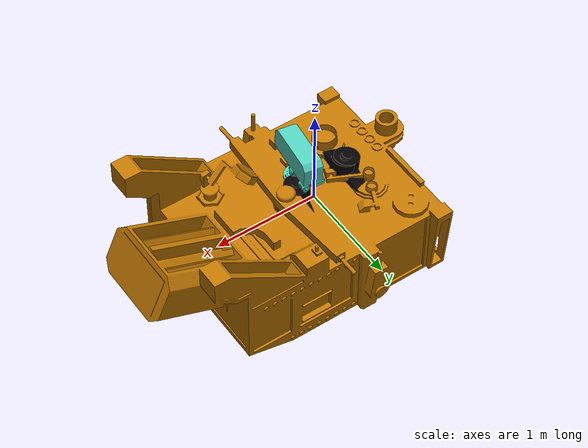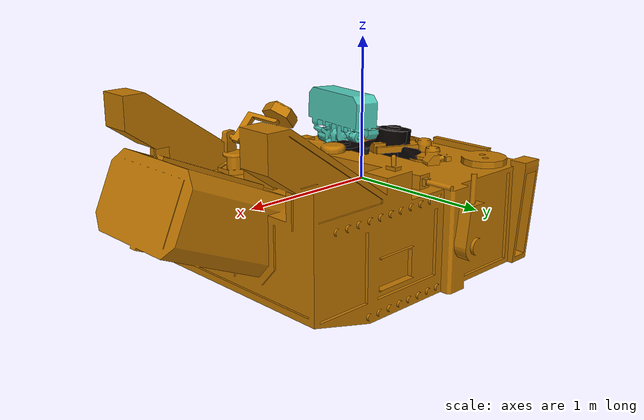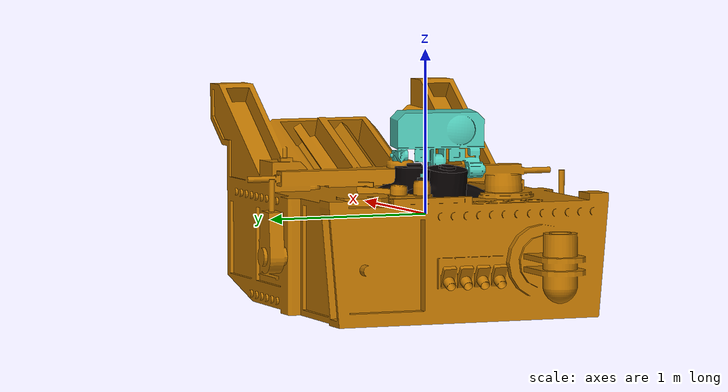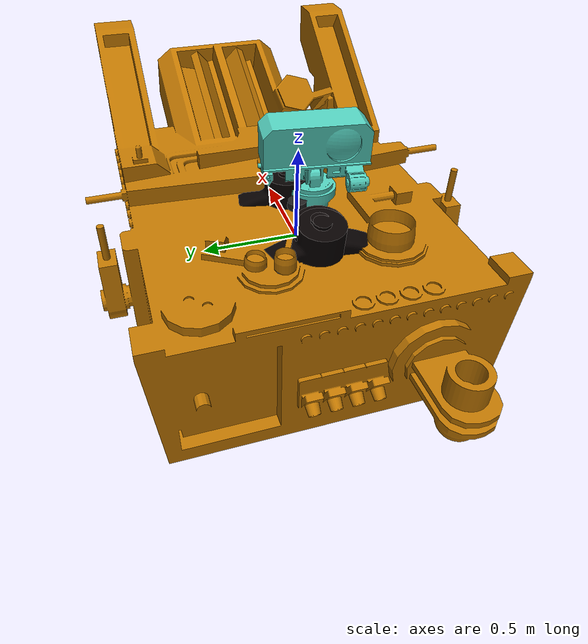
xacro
<robot name="mars_car_tiny_forward" xmlns:xacro="http://ros.org/wiki/xacro">
  <link name="base_footprint"></link>
  <joint name="footprint_joint" type="fixed">
    <origin rpy="0.00000 0.00000 0.000" xyz="0.00000 0.00000 0.00000"/>
    <parent link="base_footprint"/>
    <child link="base_link"/>
    <axis xyz="0.00000 0.00000 1.00000"/>
  </joint>
  <link name="base_link"></link>
  <joint name="base_joint" type="fixed">
    <origin rpy="0.00000 0.00000 0.00000" xyz="0.00000 0.00000 0.00000"/>
    <parent link="base_link"/>
    <child link="Mars6Mars_Rover__Curiosity_1_0__-_whole_body_link"/>
    <axis xyz="0.00000 0.00000 1.00000"/>
  </joint>
  <joint name="arm1" type="revolute">
    <limit lower="-1.57000" upper="1.57000" effort="10000.00000" velocity="5.00000"/>
    <origin rpy="0.00000 0.00000 0.00000" xyz="0.16967 0.06330 -0.05090"/>
    <parent link="Mars6Mars_Rover__Curiosity_1_0__-_whole_body_link"/>
    <child link="Mars6Mars_Rover__Curiosity_1_0__-_15__Arm_Axle-2_link"/>
    <axis xyz="0.00000 0.00000 1.00000"/>
  </joint>
  <joint name="camera1" type="revolute">
    <limit lower="-1.35000" upper="1.35000" effort="10000.00000" velocity="5.00000"/>
    <origin rpy="0.00000 0.00000 0.00000" xyz="0.08930 -0.09970 0.13058"/>
    <parent link="Mars6Mars_Rover__Curiosity_1_0__-_whole_body_link"/>
    <child link="Mars6Mars_Rover__Curiosity_1_0__-_7__Matscam_Holder-1_link"/>
    <axis xyz="0.00000 0.00000 1.00000"/>
  </joint>
  <joint name="left_foot1" type="revolute">
    <limit lower="-0.5000" upper="0.5000" effort="10000.00000" velocity="5.00000"/>
    <origin rpy="0.00000 0.00000 0.00000" xyz="0.22877 0.03703 -0.11721"/>
    <parent link="Mars6Mars_Rover__Curiosity_1_0__-_28_Wheel_connector_1-2_link"/>
    <child link="Mars6Mars_Rover__Curiosity_1_0__-_33_Front_Wheel_Servo_mech_lin"/>
    <axis xyz="0.00000 0.00000 1.00000"/>
  </joint>
  <joint name="left_foot3" type="revolute">
    <limit lower="-0.5000" upper="0.5000" effort="10000.00000" velocity="5.00000"/>
    <origin rpy="0.00000 0.00000 0.00000" xyz="-0.14234 0.03054 -0.04748"/>
    <parent link="Mars6Mars_Rover__Curiosity_1_0__-_29_Wheel_Connector_2-2_link"/>
    <child link="Mars6Mars_Rover__Curiosity_1_0__-_33_Front_Wheel_Servo_mech.001"/>
    <axis xyz="0.00000 0.00000 1.00000"/>
  </joint>
  <joint name="left_hip" type="revolute">
    <limit lower="-0.35000" upper="0.35000" effort="10000.00000" velocity="5.00000"/>
    <origin rpy="0.00000 0.00000 0.00000" xyz="-0.00550 0.17316 -0.03460"/>
    <dynamics damping="5" friction="5"/>
    <parent link="Mars6Mars_Rover__Curiosity_1_0__-_whole_body_link"/>
    <child link="Mars6Mars_Rover__Curiosity_1_0__-_28_Wheel_connector_1-2_link"/>
    <axis xyz="0.00000 1.00000 0.00000"/>
  </joint>
  <joint name="left_knee" type="revolute">
    <limit lower="-0.35000" upper="0.35000" effort="10000.00000" velocity="5.00000"/>
    <origin rpy="0.00000 0.00000 0.00000" xyz="-0.13623 0.00791 -0.03870"/>
    <parent link="Mars6Mars_Rover__Curiosity_1_0__-_28_Wheel_connector_1-2_link"/>
    <child link="Mars6Mars_Rover__Curiosity_1_0__-_29_Wheel_Connector_2-2_link"/>
    <axis xyz="0.00000 1.00000 0.00000"/>
  </joint>
  <joint name="left_wheel1" type="continuous">
    <limit lower="0" upper="0" effort="10000.00000" velocity="5.00000"/>
    <origin rpy="0.00000 0.00000 0.00000" xyz="-0.00238 0.02702 -0.08314"/>
    <parent link="Mars6Mars_Rover__Curiosity_1_0__-_33_Front_Wheel_Servo_mech_lin"/>
    <child link="Mars6Mars_Rover__Curiosity_1_0__-_1__Rover_Wheel_left_1_link"/>
    <axis xyz="0.00000 1.00000 0.00000"/>
  </joint>
  <joint name="left_wheel2" type="continuous">
    <limit lower="0" upper="0" effort="10000.00000" velocity="5.00000"/>
    <origin rpy="0.00000 0.00000 0.00000" xyz="0.12267 0.08478 -0.15679"/>
    <parent link="Mars6Mars_Rover__Curiosity_1_0__-_29_Wheel_Connector_2-2_link"/>
    <child link="Mars6Mars_Rover__Curiosity_1_0__-_1__Rover_Wheel_left_2_link"/>
    <axis xyz="0.00000 1.00000 0.00000"/>
    <dynamics damping="1" friction="1" />
  </joint>
  <joint name="left_wheel3" type="continuous">
    <limit lower="0" upper="0" effort="10000.00000" velocity="5.00000"/>
    <origin rpy="-0.00000 -0.00000 0.00000" xyz="-0.00965 0.02541 -0.08514"/>
    <parent link="Mars6Mars_Rover__Curiosity_1_0__-_33_Front_Wheel_Servo_mech.001"/>
    <child link="Mars6Mars_Rover__Curiosity_1_0__-_1__Rover_Wheel_left_3_link"/>
    <axis xyz="0.00000 1.00000 0.00000"/>
    <dynamics damping="1" friction="1" />
  </joint>
  <joint name="right_foot1" type="revolute">
    <limit lower="-0.5000" upper="0.5000" effort="10000.00000" velocity="5.00000"/>
    <origin rpy="0.00000 0.00000 0.00000" xyz="0.22441 -0.04260 -0.11148"/>
    <parent link="Mars6Mars_Rover__Curiosity_1_0__-_28_Wheel_connector_1-2_001_li"/>
    <child link="Mars6Mars_Rover__Curiosity_1_0__-_33_Front_Wheel_Servo_mech.002"/>
    <axis xyz="0.00000 0.00000 1.00000"/>
  </joint>
  <joint name="right_foot3" type="revolute">
    <limit lower="-0.5000" upper="0.5000" effort="10000.00000" velocity="5.00000"/>
    <origin rpy="0.00000 0.00000 0.00000" xyz="-0.13920 -0.03213 -0.04813"/>
    <parent link="Mars6Mars_Rover__Curiosity_1_0__-_29_Wheel_Connector_2-2_001_li"/>
    <child link="Mars6Mars_Rover__Curiosity_1_0__-_33_Front_Wheel_Servo_mechanis"/>
    <axis xyz="0.00000 0.00000 1.00000"/>

  </joint>
  <joint name="right_hip" type="revolute">
    <limit lower="-0.35000" upper="0.35000" effort="10000.00000" velocity="5.00000"/>
    <origin rpy="0.00000 0.00000 0.00000" xyz="-0.00194 -0.18320 -0.03644"/>
    <dynamics damping="5" friction="5"/>
    <parent link="Mars6Mars_Rover__Curiosity_1_0__-_whole_body_link"/>
    <child link="Mars6Mars_Rover__Curiosity_1_0__-_28_Wheel_connector_1-2_001_li"/>
    <axis xyz="0.00000 1.00000 0.00000"/>
  </joint>
  <joint name="right_knee" type="revolute">
    <limit lower="-0.35000" upper="0.35000" effort="10000.00000" velocity="5.00000"/>
    <origin rpy="0.00000 0.00000 0.00000" xyz="-0.13786 -0.00966 -0.03981"/>
    <parent link="Mars6Mars_Rover__Curiosity_1_0__-_28_Wheel_connector_1-2_001_li"/>
    <child link="Mars6Mars_Rover__Curiosity_1_0__-_29_Wheel_Connector_2-2_001_li"/>
    <axis xyz="0.00000 1.00000 0.00000"/>
    <dynamics damping="1" friction="1" />
  </joint>
  <joint name="right_wheel1" type="continuous">
    <limit lower="0" upper="0" effort="10000.00000" velocity="5.00000"/>
    <origin rpy="0.00000 0.00000 0.00000" xyz="0.00483 -0.02175 -0.08672"/>
    <parent link="Mars6Mars_Rover__Curiosity_1_0__-_33_Front_Wheel_Servo_mech.002"/>
    <child link="Mars6Mars_Rover__Curiosity_1_0__-_1__Rover_Wheel_right_1_link"/>
    <axis xyz="0.00000 1.00000 0.00000"/>
    <dynamics damping="1" friction="1" />
  </joint>
  <joint name="right_wheel2" type="continuous">
    <limit lower="0" upper="0" effort="10000.00000" velocity="5.00000"/>
    <origin rpy="0.00000 0.00000 0.00000" xyz="0.12019 -0.08425 -0.15146"/>
    <parent link="Mars6Mars_Rover__Curiosity_1_0__-_29_Wheel_Connector_2-2_001_li"/>
    <child link="Mars6Mars_Rover__Curiosity_1_0__-_1__Rover_Wheel_right_2_link"/>
    <axis xyz="0.00000 1.00000 0.00000"/>
    <dynamics damping="1" friction="1" />
  </joint>
  <joint name="right_wheel3" type="continuous">
    <limit lower="0" upper="0" effort="10000.00000" velocity="5.00000"/>
    <origin rpy="0.00000 0.00000 0.00000" xyz="-0.01339 -0.02340 -0.08101"/>
    <parent link="Mars6Mars_Rover__Curiosity_1_0__-_33_Front_Wheel_Servo_mechanis"/>
    <child link="Mars6Mars_Rover__Curiosity_1_0__-_1__Rover_Wheel_right_3_link"/>
    <axis xyz="0.00000 1.00000 0.00000"/>
    <dynamics damping="1" friction="1" />
  </joint>
  <link name="Mars6Mars_Rover__Curiosity_1_0__-_15__Arm_Axle-2_link">
  </link>
  <link name="Mars6Mars_Rover__Curiosity_1_0__-_1__Rover_Wheel_left_1_link">
    <collision>
      <origin rpy="1.78342 1.57080 0.17772" xyz="0.00027 -0.00215 0.00055"/>
      <geometry>
        <sphere radius="0.07790"/>
      </geometry>
    </collision>
    <inertial>
    <inertia  ixx="0.015680337994991043" ixy="0" ixz="0" iyy="0.020197781386013337" iyz="0" izz="0.015688269997299446" />
      <origin rpy="0.00000 0.00000 0.00000" xyz="0.00009 -0.00144 0.00018"/>
      <mass value="5.00000"/>
    </inertial>
    <visual name="Mars6Mars_Rover__Curiosity_1_0__-_1__Rover_Wheel_left_1">
      <origin rpy="0.00000 0.00000 0.00000" xyz="0.00000 0.00000 0.00000"/>
      <material name="材质.002"/>
      <geometry>
        <mesh filename="file://$(find marscar_gazebo_ros2)/models/mars_car_tiny_forward/meshes/dae/Mars6Mars_Rover__Curiosity_1_0__-_1__Rover_Wheel_left_1.001.dae" scale="1.00000 1.00000 1.00000"/>
      </geometry>
    </visual>
  </link>
  <link name="Mars6Mars_Rover__Curiosity_1_0__-_1__Rover_Wheel_left_2_link">
    <collision>
      <origin rpy="1.57080 0.00000 -3.14159" xyz="0.00055 -0.00203 0.00047"/>
      <geometry>
        <sphere radius="0.07790"/>
      </geometry>
    </collision>
    <inertial>
     <inertia  ixx="0.015680337994991043" ixy="0" ixz="0" iyy="0.020197781386013337" iyz="0" izz="0.015688269997299446" />
      <origin rpy="0.00000 0.00000 0.00000" xyz="0.00021 -0.00143 -0.00006"/>
      <mass value="5.00000"/>
    </inertial>
    <visual name="Mars6Mars_Rover__Curiosity_1_0__-_1__Rover_Wheel_left_2">
      <origin rpy="0.00000 0.00000 0.00000" xyz="0.00000 0.00000 0.00000"/>
      <material name="材质.002"/>
      <geometry>
        <mesh filename="file://$(find marscar_gazebo_ros2)/models/mars_car_tiny_forward/meshes/dae/Mars6Mars_Rover__Curiosity_1_0__-_1__Rover_Wheel_left_2.001.dae" scale="1.00000 1.00000 1.00000"/>
      </geometry>
    </visual>
  </link>
  <link name="Mars6Mars_Rover__Curiosity_1_0__-_1__Rover_Wheel_left_3_link">
    <collision>
      <origin rpy="1.57080 -0.00000 -3.14159" xyz="0.00059 -0.00203 0.00041"/>
      <geometry>
        <sphere radius="0.07790"/>
      </geometry>
    </collision>
    <inertial>
      <inertia  ixx="0.015680337994991043" ixy="0" ixz="0" iyy="0.020197781386013337" iyz="0" izz="0.015688269997299446" />
      <origin rpy="0.00000 0.00000 0.00000" xyz="0.00022 -0.00143 -0.00005"/>
      <mass value="5.00000"/>
    </inertial>
    <visual name="Mars6Mars_Rover__Curiosity_1_0__-_1__Rover_Wheel_left_3">
      <origin rpy="0.00000 0.00000 -0.00000" xyz="0.00000 -0.00000 0.00000"/>
      <material name="材质.002"/>
      <geometry>
        <mesh filename="file://$(find marscar_gazebo_ros2)/models/mars_car_tiny_forward/meshes/dae/Mars6Mars_Rover__Curiosity_1_0__-_1__Rover_Wheel_left_3.001.dae" scale="1.00000 1.00000 1.00000"/>
      </geometry>
    </visual>
  </link>
  <link name="Mars6Mars_Rover__Curiosity_1_0__-_1__Rover_Wheel_right_1_link">
    <collision>
      <origin rpy="-1.57093 1.52197 0.00338" xyz="-0.00066 0.00193 0.00038"/>
      <geometry>
        <sphere radius="0.07790"/>
      </geometry>
    </collision>
    <inertial>
      <inertia  ixx="0.015680337994991043" ixy="0" ixz="0" iyy="0.020197781386013337" iyz="0" izz="0.015688269997299446" />
      <origin rpy="0.00000 0.00000 0.00000" xyz="-0.00023 0.00143 -0.00006"/>
      <mass value="5.00000"/>
    </inertial>
    <visual name="Mars6Mars_Rover__Curiosity_1_0__-_1__Rover_Wheel_right_1">
      <origin rpy="0.00000 0.00000 0.00000" xyz="-0.00023 0.00143 -0.00006"/>
      <material name="材质.002"/>
      <geometry>
        <mesh filename="file://$(find marscar_gazebo_ros2)/models/mars_car_tiny_forward/meshes/dae/Mars6Mars_Rover__Curiosity_1_0__-_1__Rover_Wheel_right_1.001.dae" scale="1.00000 1.00000 1.00000"/>
      </geometry>
    </visual>
  </link>
  <link name="Mars6Mars_Rover__Curiosity_1_0__-_1__Rover_Wheel_right_2_link">
    <collision>
      <origin rpy="1.57080 0.00000 -3.14159" xyz="-0.00061 0.00203 0.00040"/>
      <geometry>
        <sphere radius="0.07790"/>
      </geometry>
    </collision>
    <inertial>
      <inertia  ixx="0.015680337994991043" ixy="0" ixz="0" iyy="0.020197781386013337" iyz="0" izz="0.015688269997299446" />
      <origin rpy="0.00000 0.00000 0.00000" xyz="-0.00021 0.00143 -0.00005"/>
      <mass value="5.00000"/>
    </inertial>
    <visual name="Mars6Mars_Rover__Curiosity_1_0__-_1__Rover_Wheel_right_2">
      <origin rpy="0.00000 0.00000 0.00000" xyz="0.00000 0.00000 0.00000"/>
      <material name="材质.002"/>
      <geometry>
        <mesh filename="file://$(find marscar_gazebo_ros2)/models/mars_car_tiny_forward/meshes/dae/Mars6Mars_Rover__Curiosity_1_0__-_1__Rover_Wheel_right_2.001.dae" scale="1.00000 1.00000 1.00000"/>
      </geometry>
    </visual>
  </link>
  <link name="Mars6Mars_Rover__Curiosity_1_0__-_1__Rover_Wheel_right_3_link">
    <collision>
      <origin rpy="1.58277 0.03499 -3.13636" xyz="0.00056 0.00193 -0.00063"/>
      <geometry>
        <sphere radius="0.07790"/>
      </geometry>
    </collision>
    <inertial>
      <inertia  ixx="0.015680337994991043" ixy="0" ixz="0" iyy="0.020197781386013337" iyz="0" izz="0.015688269997299446" />
      <origin rpy="0.00000 0.00000 0.00000" xyz="-0.00026 0.00143 -0.00004"/>
      <mass value="5.00000"/>
    </inertial>
    <visual name="Mars6Mars_Rover__Curiosity_1_0__-_1__Rover_Wheel_right_3">
      <origin rpy="0.00000 0.00000 0.00000" xyz="0.00000 0.00000 0.00000"/>
      <material name="材质.002"/>
      <geometry>
        <mesh filename="file://$(find marscar_gazebo_ros2)/models/mars_car_tiny_forward/meshes/dae/Mars6Mars_Rover__Curiosity_1_0__-_1__Rover_Wheel_right_3.001.dae" scale="1.00000 1.00000 1.00000"/>
      </geometry>
    </visual>
  </link>

  <link name="Mars6Mars_Rover__Curiosity_1_0__-_28_Wheel_connector_1-2_001_li">
    <inertial>
      <inertia  ixx="0.01586436102114739" ixy="0" ixz="0" iyy="0.1389335988966778" iyz="0" izz="0.13507964012734022" />
      <origin rpy="0.00000 0.00000 0.00000" xyz="0.10977 -0.00456 -0.04567"/>
      <mass value="10.00000"/>
    </inertial>
    <visual name="Mars6Mars_Rover__Curiosity_1_0__-_28_Wheel_connector_1-2_001">
      <origin rpy="0.00000 0.00000 0.00000" xyz="0.08989 0.00000 -0.03121"/>
      <material name="材质.007"/>
      <geometry>
        <mesh filename="file://$(find marscar_gazebo_ros2)/models/mars_car_tiny_forward/meshes/dae/Mars6Mars_Rover__Curiosity_1_0__-_28_Wheel_connector_1-2_00.dae" scale="1.00000 1.00000 1.00000"/>
      </geometry>
    </visual>
  </link>
  <link name="Mars6Mars_Rover__Curiosity_1_0__-_28_Wheel_connector_1-2_link">
    <inertial>
      <inertia  ixx="0.015864359967019633" ixy="0" ixz="0" iyy="0.1389335988966778" iyz="0" izz="0.13507963907321247" />
      <origin rpy="0.00000 0.00000 0.00000" xyz="0.11332 0.00456 -0.04751"/>
      <mass value="10.00000"/>
    </inertial>
    <visual name="Mars6Mars_Rover__Curiosity_1_0__-_28_Wheel_connector_1-2">
      <origin rpy="0.00000 0.00000 0.00000" xyz="0.09345 0.00000 -0.03304"/>
      <material name="材质.007"/>
      <geometry>
        <mesh filename="file://$(find marscar_gazebo_ros2)/models/mars_car_tiny_forward/meshes/dae/Mars6Mars_Rover__Curiosity_1_0__-_28_Wheel_connector_1-2.001.dae" scale="1.00000 1.00000 1.00000"/>
      </geometry>
    </visual>
  </link>
  <link name="Mars6Mars_Rover__Curiosity_1_0__-_29_Wheel_Connector_2-2_001_li">
    <inertial>
      <inertia  ixx="0.004092295328463539" ixy="0" ixz="0" iyy="0.011362644811934977" iyz="0" izz="0.008365089424103947" />
      <origin rpy="0.00000 0.00000 0.00000" xyz="0.04148 -0.01770 -0.09031"/>
      <mass value="5.00000"/>
    </inertial>
    <visual name="Mars6Mars_Rover__Curiosity_1_0__-_29_Wheel_Connector_2-2_001">
      <origin rpy="0.00000 0.00000 0.00000" xyz="-0.02351 -0.01970 -0.04864"/>
      <material name="材质.007"/>
      <geometry>
        <mesh filename="file://$(find marscar_gazebo_ros2)/models/mars_car_tiny_forward/meshes/dae/Mars6Mars_Rover__Curiosity_1_0__-_29_Wheel_Connector_2-2_00.dae" scale="1.00000 1.00000 1.00000"/>
      </geometry>
    </visual>
  </link>
  <link name="Mars6Mars_Rover__Curiosity_1_0__-_29_Wheel_Connector_2-2_link">
    <inertial>
      <inertia  ixx="0.004092295328463539" ixy="0" ixz="0" iyy="0.011362644811934977" iyz="0" izz="0.008365089424103947" />
      <origin rpy="0.00000 0.00000 0.00000" xyz="0.04341 0.01950 -0.09326"/>
      <mass value="5.00000"/>
    </inertial>
    <visual name="Mars6Mars_Rover__Curiosity_1_0__-_29_Wheel_Connector_2-2">
      <origin rpy="0.00000 0.00000 0.00000" xyz="-0.02159 0.02151 -0.05158"/>
      <material name="材质.007"/>
      <geometry>
        <mesh filename="file://$(find marscar_gazebo_ros2)/models/mars_car_tiny_forward/meshes/dae/Mars6Mars_Rover__Curiosity_1_0__-_29_Wheel_Connector_2-2.001.dae" scale="1.00000 1.00000 1.00000"/>
      </geometry>
    </visual>
  </link>
  <link name="Mars6Mars_Rover__Curiosity_1_0__-_33_Front_Wheel_Servo_mech.001">
    <inertial>
      <inertia  ixx="0.002352120044837628" ixy="0" ixz="0" iyy="0.0017273099964177177" iyz="0" izz="0.0011494207690713" />
      <origin rpy="0.00000 0.00000 0.00000" xyz="-0.00607 -0.02996 -0.06059"/>
      <mass value="5.00000"/>
    </inertial>
    <visual name="Mars6Mars_Rover__Curiosity_1_0__-_33_Front_Wheel_Servo_mech.004">
      <origin rpy="0.00000 0.00000 0.00000" xyz="-0.00523 -0.02934 -0.05449"/>
      <material name="材质.007"/>
      <geometry>
        <mesh filename="file://$(find marscar_gazebo_ros2)/models/mars_car_tiny_forward/meshes/dae/Mars6Mars_Rover__Curiosity_1_0__-_33_Front_Wheel_Servo_mech.004.dae" scale="1.00000 1.00000 1.00000"/>
      </geometry>
    </visual>
  </link>
  <link name="Mars6Mars_Rover__Curiosity_1_0__-_33_Front_Wheel_Servo_mech.002">
    <inertial>
      <inertia  ixx="0.0023420283542323846" ixy="0" ixz="0" iyy="0.0017433353748485582" iyz="0" izz="0.0011561288965861634" />
      <origin rpy="0.00000 0.00000 0.00000" xyz="-0.00802 0.03211 -0.06195"/>
      <mass value="5.00000"/>
    </inertial>
    <visual name="Mars6Mars_Rover__Curiosity_1_0__-_33_Front_Wheel_Servo_mech.003">
      <origin rpy="0.00000 0.00000 0.00000" xyz="-0.00793 0.03150 -0.05579"/>
      <material name="材质.007"/>
      <geometry>
        <mesh filename="file://$(find marscar_gazebo_ros2)/models/mars_car_tiny_forward/meshes/dae/Mars6Mars_Rover__Curiosity_1_0__-_33_Front_Wheel_Servo_mech.003.dae" scale="1.00000 1.00000 1.00000"/>
      </geometry>
    </visual>
  </link>
  <link name="Mars6Mars_Rover__Curiosity_1_0__-_33_Front_Wheel_Servo_mech_lin">
    <inertial>
      <inertia  ixx="0.0023568104222244273" ixy="0" ixz="0" iyy="0.0016739295079963347" iyz="0" izz="0.0011002880751135174" />
      <origin rpy="0.00000 0.00000 0.00000" xyz="-0.00371 -0.02830 -0.05807"/>
      <mass value="5.00000"/>
    </inertial>
    <visual name="Mars6Mars_Rover__Curiosity_1_0__-_33_Front_Wheel_Servo_mech">
      <origin rpy="0.00000 0.00000 0.00000" xyz="-0.00362 -0.02768 -0.05191"/>
      <material name="材质.007"/>
      <geometry>
        <mesh filename="file://$(find marscar_gazebo_ros2)/models/mars_car_tiny_forward/meshes/dae/Mars6Mars_Rover__Curiosity_1_0__-_33_Front_Wheel_Servo_mech.005.dae" scale="1.00000 1.00000 1.00000"/>
      </geometry>
    </visual>
  </link>
  <link name="Mars6Mars_Rover__Curiosity_1_0__-_33_Front_Wheel_Servo_mechanis">
    <inertial>
      <inertia  ixx="0.002346255170752066" ixy="0" ixz="0" iyy="0.0017549479286614136" iyz="0" izz="0.001168817186416394" />
      <origin rpy="0.00000 0.00000 0.00000" xyz="-0.01215 0.03223 -0.05659"/>
      <mass value="5.00000"/>
    </inertial>
    <visual name="Mars6Mars_Rover__Curiosity_1_0__-_33_Front_Wheel_Servo_mech.005">
      <origin rpy="0.00000 0.00000 0.00000" xyz="-0.01140 0.03168 -0.05047"/>
      <material name="材质.007"/>
      <geometry>
        <mesh filename="file://$(find marscar_gazebo_ros2)/models/mars_car_tiny_forward/meshes/dae/Mars6Mars_Rover__Curiosity_1_0__-_33_Front_Wheel_Servo_mech.006.dae" scale="1.00000 1.00000 1.00000"/>
      </geometry>
    </visual>
  </link>
  <link name="Mars6Mars_Rover__Curiosity_1_0__-_7__Matscam_Holder-1_link">
    <inertial>
      <inertia  ixx="0.033972907445050285" ixy="0" ixz="0" iyy="0.02910473861946099" iyz="0" izz="0.008096255098011493" />
      <origin rpy="0.00000 0.00000 0.00000" xyz="0.00007 0.00182 0.00749"/>
      <mass value="10.00000"/>
    </inertial>
    <visual name="Mars6Mars_Rover__Curiosity_1_0__-_7__Matscam_Holder-1">
      <origin rpy="0.00000 0.00000 0.00000" xyz="0.00000 0.00000 0.00000"/>
      <material name="材质.003"/>
      <geometry>
        <mesh filename="file://$(find marscar_gazebo_ros2)/models/mars_car_tiny_forward/meshes/dae/Mars6Mars_Rover__Curiosity_1_0__-_7__Matscam_Holder-1.001.dae" scale="1.00000 1.00000 1.00000"/>
      </geometry>
    </visual>
  </link>
  <link name="Mars6Mars_Rover__Curiosity_1_0__-_whole_body_link">
    <collision name="Mars6Mars_Rover__Curiosity_1_0__-_whole_body_collision">
      <origin rpy="0.00000 0.00000 0.00000" xyz="0.05103 0.00563 0.01153"/>
      <geometry>
        <box size="0.29034 0.31436 0.20157"/>
      </geometry>
    </collision>
    <inertial>
      <inertia  ixx="0.9296970128839942" ixy="0" ixz="0" iyy="1.8737618892545362" iyz="0" izz="2.2616942768650596" />
      <origin rpy="0.00000 0.00000 0.00000" xyz="0.03982 -0.00313 -0.10695"/>
      <mass value="80.00000"/>
    </inertial>
    <visual name="Mars6Mars_Rover__Curiosity_1_0__-_whole_body">
      <origin rpy="0.00000 0.00000 0.00000" xyz="0.00000 0.00000 0.00000"/>
      <material name="Material.002"/>
      <geometry>
        <mesh filename="file://$(find marscar_gazebo_ros2)/models/mars_car_tiny_forward/meshes/dae/Mars6Mars_Rover__Curiosity_1_0__-_whole_body.001.dae" scale="1.00000 1.00000 1.00000"/>
      </geometry>
    </visual>
  </link>
  <!-- gazebo特定的扩展部分 -->

  <material name="Material.002">
    <color rgba="0.74902 0.46275 0.00392 1.00000"/>
  </material>
  <material name="材质.002">
    <color rgba="0.00000 0.00000 0.00784 1.00000"/>
  </material>
  <material name="材质.003">
    <color rgba="0.31765 0.80000 0.72941 1.00000"/>
  </material>
  <material name="材质.007">
    <color rgba="0.01961 0.00000 0.00000 1.00000"/>
  </material>
  <ros2_control name="GazeboSystem" type="system">
    <hardware>
      <plugin>gazebo_ros2_control/GazeboSystem</plugin>
    </hardware>

    <joint name="camera1">
      <command_interface name="position">
        <param name="min">-10</param>
        <param name="max">10</param>
      </command_interface>
      <state_interface name="position"/>
      <state_interface name="velocity"/>
      <state_interface name="effort"/>
    </joint>
    <joint name="left_foot1">
      <command_interface name="position">
        <param name="min">-1</param>
        <param name="max">1</param>
      </command_interface>
      <state_interface name="position">

      </state_interface>
      <state_interface name="velocity"/>
      <state_interface name="effort"/>
    </joint>

    <joint name="left_foot3">
      <command_interface name="position">
        <param name="min">-1</param>
        <param name="max">1</param>
      </command_interface>
      <state_interface name="position"/>
      <state_interface name="velocity"/>
      <state_interface name="effort"/>
    </joint>
    <joint name="left_hip">
      <command_interface name="effort">
        <param name="min">-1000</param>
        <param name="max">1000</param>
      </command_interface>
      <state_interface name="position">
      </state_interface>
      <state_interface name="velocity"/>
      <state_interface name="effort"/>
    </joint>
    <joint name="right_foot1">
      <command_interface name="position">
        <param name="min">-1</param>
        <param name="max">1</param>
      </command_interface>
      <state_interface name="position">
      </state_interface>
      <state_interface name="velocity"/>
      <state_interface name="effort"/>
    </joint>

    <joint name="right_foot3">
      <command_interface name="position">
        <param name="min">-1</param>
        <param name="max">1</param>
      </command_interface>
      <state_interface name="position"/>
      <state_interface name="velocity"/>
      <state_interface name="effort"/>
    </joint>
    <joint name="right_hip">
      <command_interface name="effort">
        <param name="min">-1000</param>
        <param name="max">1000</param>
      </command_interface>
      <state_interface name="position"/>
      <state_interface name="velocity"/>
      <state_interface name="effort"/>
    </joint>
    <joint name="right_wheel1">
      <command_interface name="velocity">
        <param name="min">-1000</param>
        <param name="max">1000</param>
      </command_interface>
      <state_interface name="position"/>
      <state_interface name="velocity"/>
      <state_interface name="effort"/>
    </joint>
    <joint name="right_wheel2">
      <command_interface name="velocity">
        <param name="min">-1000</param>
        <param name="max">1000</param>
      </command_interface>
      <state_interface name="position"/>
      <state_interface name="velocity"/>
      <state_interface name="effort"/>
    </joint>
    <joint name="right_wheel3">
      <command_interface name="velocity">
        <param name="min">-1000</param>
        <param name="max">1000</param>
      </command_interface>
      <state_interface name="position"/>
      <state_interface name="velocity"/>
      <state_interface name="effort"/>
    </joint>
    <joint name="left_wheel1">
      <command_interface name="velocity">
        <param name="min">-1000</param>
        <param name="max">1000</param>
      </command_interface>
      <state_interface name="position"/>
      <state_interface name="velocity"/>
      <state_interface name="effort"/>
    </joint>
    <joint name="left_wheel2">
      <command_interface name="velocity">
        <param name="min">-1000</param>
        <param name="max">1000</param>
      </command_interface>
      <state_interface name="position"/>
      <state_interface name="velocity"/>
      <state_interface name="effort"/>
    </joint>
    <joint name="left_wheel3">
      <command_interface name="velocity">
        <param name="min">-1000</param>
        <param name="max">1000</param>
      </command_interface>
      <state_interface name="position"/>
      <state_interface name="velocity"/>
      <state_interface name="effort"/>
    </joint>
    <joint name="left_knee">
      <command_interface name="effort">
        <param name="min">-1000</param>
        <param name="max">1000</param>
      </command_interface>
      <state_interface name="position"/>
      <state_interface name="velocity"/>
      <state_interface name="effort"/>
    </joint>
    <joint name="right_knee">
      <command_interface name="effort">
        <param name="min">-1000</param>
        <param name="max">1000</param>
      </command_interface>
      <state_interface name="position"/>
      <state_interface name="velocity"/>
      <state_interface name="effort"/>
    </joint>
  </ros2_control>
  <gazebo>
    <plugin filename="libgazebo_ros2_control.so" name="marscar_gazebo_ros2_control">
      <parameters>$(find marscar_gazebo_ros2)/config/mars_car_controller.yaml</parameters>
    </plugin>
  </gazebo>
  <gazebo>
    <plugin name="odom_pub_plugin" filename="libgazebo_ros_odom.so">

      <update_rate>100</update_rate>
      <left_joint>left_wheel2</left_joint>
      <right_joint>right_wheel2</right_joint>
      <wheel_separation>0.287</wheel_separation>
      <wheel_diameter>0.066</wheel_diameter>
      <publish_odom>true</publish_odom>
      <publish_odom_tf>true</publish_odom_tf>
      <odometry_topic>odom</odometry_topic>
      <odometry_frame>odom</odometry_frame>
      <robot_base_frame>base_footprint</robot_base_frame>

    </plugin>

    <plugin name="ball_shooter_plugin" filename="libball_shooter_plugin.so">
      <projectile>
        <model_name>blue_projectile0</model_name>
        <link_name>link</link_name>
        <frame>Mars6Mars_Rover__Curiosity_1_0__-_7__Matscam_Holder-1_link</frame>
        <pose>0.2 0 0 0 0 0</pose>
      </projectile>
      <shot_force>2000</shot_force>
      <topic>my_robot/ball_shooter/fire</topic>
    </plugin>

  </gazebo>

  <xacro:include filename="$(find marscar_gazebo_ros2)/sensor_description/inertial_macros.xacro" />

  <xacro:include filename="$(find marscar_gazebo_ros2)/sensor_description/marscar_camera.xacro"/>
  <xacro:include filename="$(find marscar_gazebo_ros2)/sensor_description/marscar_lidar.xacro" />
  <xacro:include filename="$(find marscar_gazebo_ros2)/sensor_description/imu.xacro" />
  <xacro:include filename="$(find marscar_gazebo_ros2)/sensor_description/marscar_3Dlidar.xacro" />
  <xacro:include filename="$(find marscar_gazebo_ros2)/sensor_description/gps.xacro" />
  <xacro:include filename="$(find marscar_gazebo_ros2)/sensor_description/multi_camera.xacro" />
  <xacro:include filename="$(find marscar_gazebo_ros2)/sensor_description/gazebo.xacro" />
</robot>

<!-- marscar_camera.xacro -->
<robot xmlns:xacro="http://www.ros.org/wiki/xacro" >

    <joint name="camera_joint" type="fixed">
        <parent link="Mars6Mars_Rover__Curiosity_1_0__-_whole_body_link"/>
        <child link="camera_link"/>
        <origin xyz="0.0 0 0.3" rpy="0 0.0 0"/>
    </joint>

    <link name="camera_link">
        <visual>
            <geometry>
                <box size="0.010 0.03 0.03"/>
            </geometry>

        </visual>
        <visual>
            <origin xyz="0 0 -0.05"/>
            <geometry>
                <cylinder radius="0.002" length="0.1"/>
            </geometry>

        </visual>

    </link>

    <joint name="camera_optical_joint" type="fixed">
        <parent link="camera_link"/>
        <child link="camera_link_optical"/>
        <origin xyz="0 0 0" rpy="${-pi/2} 0 ${-pi/2}"/>
    </joint>

    <link name="camera_link_optical"></link>

    <gazebo reference="camera_link">
        <material>Gazebo/Black</material>

        <sensor type="camera" name="camera1">
          <update_rate>30</update_rate>
          <visualize>0</visualize>
          <camera name="head">
            <image>
              <width>640</width>
              <height>480</height>
              <format>R8G8B8</format>
            </image>
          </camera>
          <plugin name="camera_controller" filename="libgazebo_ros_camera.so">
            <ros>

              <!-- TODO(louise) Remapping not working due to https://github.com/ros-perception/image_common/issues/93 -->
              <remapping>image_raw:=image_raw</remapping>
              <remapping>camera_info:=camera_info_demo</remapping>
            </ros>
          </plugin>
        </sensor>
    </gazebo>

</robot>

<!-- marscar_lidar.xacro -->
<robot xmlns:xacro="http://www.ros.org/wiki/xacro" >
    <gazebo reference="laser_frame">
        <material>Gazebo/Black</material>

        <sensor name="laser" type="ray">
            <pose> 0 0 0 0 0 0 </pose>
            <visualize>true</visualize>
            <update_rate>10</update_rate>
            <ray>
                <scan>
                    <horizontal>
                        <samples>360</samples>
                        <min_angle>-3.14</min_angle>
                        <max_angle>3.14</max_angle>
                    </horizontal>
                </scan>
                <range>
                    <min>0.3</min>
                    <max>12</max>
                </range>
            </ray>
            <plugin name="laser_controller" filename="libgazebo_ros_ray_sensor.so">
                <ros>
                    <argument>~/out:=scan</argument>
                </ros>
                <output_type>sensor_msgs/LaserScan</output_type>
                <frame_name>laser_frame</frame_name>
            </plugin>
        </sensor>
    </gazebo>

    <joint name="laser_joint" type="fixed">
        <parent link="Mars6Mars_Rover__Curiosity_1_0__-_whole_body_link"/>
        <child link="laser_frame"/>
        <origin xyz="0.0 0 0.1" rpy="0 0 0"/>
    </joint>

    <link name="laser_frame">
        <visual>
            <geometry>
                <cylinder radius="0.05" length="0.04"/>
            </geometry>

        </visual>
        <visual>
            <origin xyz="0 0 -0.05"/>
            <geometry>
                <cylinder radius="0.01" length="0.1"/>
            </geometry>

        </visual>
        <collision>
            <geometry>
                <cylinder radius="0.05" length="0.04"/>
            </geometry>
        </collision>
        <xacro:inertial_cylinder mass="0.1" length="0.04" radius="0.05">
            <origin xyz="0 0 0" rpy="0 0 0"/>
        </xacro:inertial_cylinder>
    </link>

</robot>

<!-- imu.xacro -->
<robot xmlns:xacro="http://www.ros.org/wiki/xacro" >

  <gazebo reference="imu_link">
      <sensor name="imu_sensor" type="imu">
        <plugin filename="libgazebo_ros_imu_sensor.so" name="imu_plugin">
            <ros>
              <namespace>/</namespace>
              <remapping>~/out:=imu</remapping>
            </ros>
            <initial_orientation_as_reference>true</initial_orientation_as_reference>
        </plugin>
        <always_on>true</always_on>
        <update_rate>200</update_rate>
      </sensor>
    </gazebo>

    <xacro:property name="imu_offset_x" value="0" />
    <xacro:property name="imu_offset_y" value="0" />
    <xacro:property name="imu_offset_z" value="0.02" />
    <xacro:property name="imu_size"     value="0.01" />
    <xacro:property name="imu_m" value="0.01" /> <!-- imu质量 -->
    <!-- imu -->
    <joint name="imutobody" type="fixed">
        <origin xyz="${imu_offset_x} ${imu_offset_y} ${imu_offset_z}" rpy="0 0 0" />
        <parent link="Mars6Mars_Rover__Curiosity_1_0__-_whole_body_link"/>
        <child link="imu_link"/>
    </joint>

    <link name="imu_link">
        <visual>
            <origin rpy="0 0 0" xyz="0 0 0" />
            <geometry>
                    <box size="${imu_size} ${imu_size} ${imu_size}"/>
            </geometry>
            <material name= "red" >
              <color rgba="1.0 0.0 0.0 1.0" />
            </material>
        </visual>
        <collision>
            <geometry>
                <box size="${imu_size} ${imu_size} ${imu_size}" />
            </geometry>
            <origin xyz="0.0 0.0 0" rpy="0.0 0.0 0.0" />
        </collision>
        <xacro:inertial_cylinder mass="0.1" length="0.04" radius="0.05">
            <origin xyz="0 0 0" rpy="0 0 0"/>
        </xacro:inertial_cylinder>
    </link>

</robot>

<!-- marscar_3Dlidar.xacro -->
<robot xmlns:xacro="http://www.ros.org/wiki/xacro" >
  <xacro:property name="M_PI" value="3.1415926535897931" />

    <gazebo reference="lidar_link">
        <material>Gazebo/Black</material>

        <sensor type="gpu_ray" name="velodyne-HDL32E">
          <pose>0 0 0 0 0 0</pose>
          <visualize>false</visualize>
          <update_rate>30</update_rate>
          <ray>
            <scan>
              <horizontal>
                <samples>2187</samples>
                <resolution>1</resolution>
                <min_angle>-${M_PI}</min_angle>
                <max_angle>${M_PI}</max_angle>
              </horizontal>
              <vertical>
                <samples>32</samples>
                <resolution>1</resolution>
                <min_angle>-${30.67*M_PI/180.0}</min_angle>
                <max_angle> ${10.67*M_PI/180.0}</max_angle>
              </vertical>
            </scan>
            <range>
              <min>0.3</min>
              <max>131</max>
              <resolution>0.001</resolution>
            </range>
            <noise>
              <type>gaussian</type>
              <mean>0.0</mean>
              <stddev>0.0</stddev>
            </noise>
          </ray>
          <plugin name="gazebo_ros_laser_controller" filename="libgazebo_ros_velodyne_laser.so">
            <ros>
              <namespace>/velodyne</namespace>
              <remapping>~/out:=/velodyne_points</remapping>
            </ros>
            <tf_prefix> </tf_prefix>
            <frame_name>lidar_link</frame_name>
            <organize_cloud>false</organize_cloud>
            <min_range>0.3</min_range>
            <max_range>130</max_range>
            <gaussian_noise>0.008</gaussian_noise>
          </plugin>
        </sensor>
    </gazebo>

    <joint name="lidar_joint" type="fixed">
        <parent link="Mars6Mars_Rover__Curiosity_1_0__-_whole_body_link"/>
        <child link="lidar_link"/>
        <origin xyz="0.0 0 0.2" rpy="0 0 0"/>
    </joint>

    <link name="lidar_link">
        <visual>
            <geometry>
                <cylinder radius="0.05" length="0.04"/>
            </geometry>

        </visual>
        <visual>
            <origin xyz="0 0 -0.05"/>
            <geometry>
                <cylinder radius="0.01" length="0.1"/>
            </geometry>

        </visual>
        <collision>
            <geometry>
                <cylinder radius="0.05" length="0.04"/>
            </geometry>
        </collision>
        <xacro:inertial_cylinder mass="0.1" length="0.04" radius="0.05">
            <origin xyz="0 0 0" rpy="0 0 0"/>
        </xacro:inertial_cylinder>
    </link>

</robot>

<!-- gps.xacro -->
<robot xmlns:xacro="http://www.ros.org/wiki/xacro" >

    <joint name="gps_joint" type="fixed">
        <parent link="Mars6Mars_Rover__Curiosity_1_0__-_whole_body_link"/>
        <child link="gps_link"/>
        <origin xyz="0.0 0 0.3" rpy="0 0.0 0"/>
    </joint>

    <link name="gps_link">
        <visual>
            <geometry>
                <box size="0.010 0.03 0.03"/>
            </geometry>

        </visual>
        <visual>
            <origin xyz="0 0 -0.05"/>
            <geometry>
                <cylinder radius="0.002" length="0.1"/>
            </geometry>

        </visual>

    </link>

    <gazebo reference="gps_link">
        <material>Gazebo/Black</material>

        <sensor name="my_gps" type="gps">
          <always_on>true</always_on>
          <update_rate>30</update_rate>
          <gps>
            <position_sensing>
              <horizontal>
                <noise type="gaussian">
                  <mean>0.0</mean>
                  <stddev>2e-4</stddev>
                </noise>
              </horizontal>
              <vertical>
                <noise type="gaussian">
                  <mean>0.0</mean>
                  <stddev>2e-4</stddev>
                </noise>
              </vertical>
            </position_sensing>
          </gps>
          <plugin name="my_gps_plugin" filename="libgazebo_ros_gps_sensor.so">
            <ros>
              <namespace>/gps</namespace>
              <remapping>~/out:=data</remapping>
            </ros>
          </plugin>
        </sensor>
    </gazebo>

</robot>

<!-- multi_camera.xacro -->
<robot xmlns:xacro="http://www.ros.org/wiki/xacro" >

    <joint name="multicamera_joint" type="fixed">
        <parent link="Mars6Mars_Rover__Curiosity_1_0__-_whole_body_link"/>
        <child link="multicamera_link"/>
        <origin xyz="0.0 0 0.3" rpy="0 0.0 0"/>
    </joint>

    <link name="multicamera_link">
        <visual>
            <geometry>
                <box size="0.010 0.03 0.03"/>
            </geometry>

        </visual>
        <visual>
            <origin xyz="0 0 -0.05"/>
            <geometry>
                <cylinder radius="0.002" length="0.1"/>
            </geometry>

        </visual>

    </link>

    <gazebo reference="multicamera_link">
        <material>Gazebo/Black</material>

        <sensor type="multicamera" name="camera1">
          <pose>0 -0.2 0 0 0 0</pose>
          <update_rate>60</update_rate>
          <visualize>true</visualize>
          <camera name="left">
            <horizontal_fov>0.7</horizontal_fov>
            <image>
              <width>640</width>
              <height>480</height>
              <format>R8G8B8</format>
            </image>
            <clip>
              <near>0.02</near>
              <far>300</far>
            </clip>
            <noise>
              <type>gaussian</type>
              <mean>0.0</mean>
              <stddev>0.007</stddev>
            </noise>
          </camera>
          <camera name="right">
            <pose>0 0.2 0 0 0 0</pose>
            <horizontal_fov>0.7</horizontal_fov>
            <image>
              <width>640</width>
              <height>480</height>
              <format>R8G8B8</format>
            </image>
            <clip>
              <near>0.02</near>
              <far>300</far>
            </clip>
            <noise>
              <type>gaussian</type>
              <mean>0.0</mean>
              <stddev>0.007</stddev>
            </noise>
          </camera>
          <plugin name="camera_controller" filename="libgazebo_ros_camera.so">
            <ros>
              <namespace>demo_cam</namespace>
              <!-- topics need to be prefixed with camera_name for remapping -->
              <remapping>mycamera/left/image_raw:=mycamera/left/image_demo</remapping>
              <remapping>mycamera/right/image_raw:=mycamera/right/image_demo</remapping>
              <remapping>mycamera/left/camera_info:=mycamera/left/camera_info_demo</remapping>
              <remapping>mycamera/right/camera_info:=mycamera/right/camera_info_demo</remapping>
            </ros>

            <camera_name>mycamera</camera_name>

            <!-- Specify if triggered camera -->
          </plugin>
        </sensor>
    </gazebo>

</robot>
